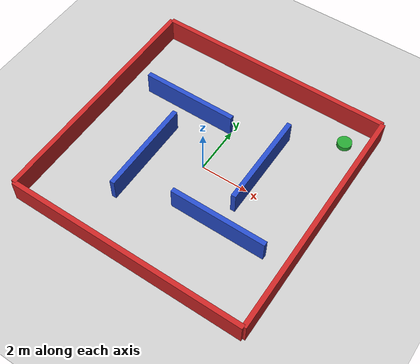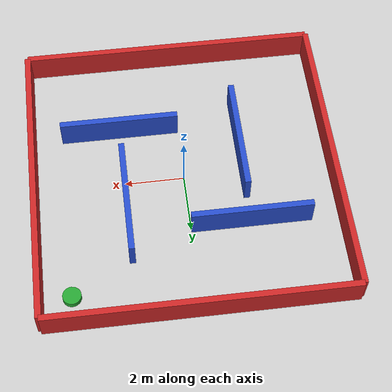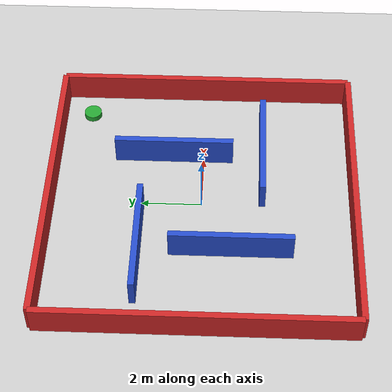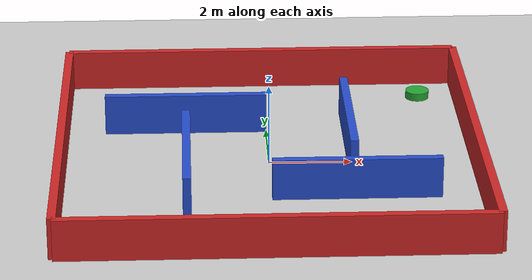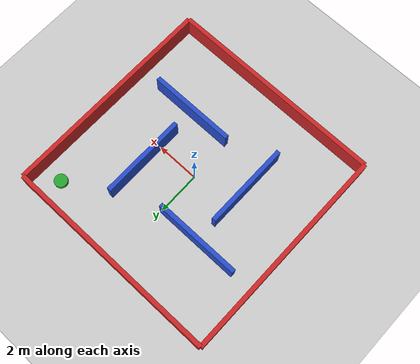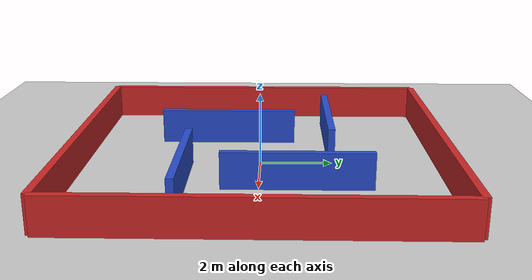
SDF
<?xml version="1.0" ?>
<sdf version="1.6">
  <world name="maze_world">

    <!-- Physics -->
    <physics name="default_physics" default="0" type="ode">
      <gravity>0 0 -9.8066</gravity>
      <ode>
        <solver>
          <type>quick</type>
          <iters>150</iters>
          <sor>1.3</sor>
          <use_dynamic_moi_rescaling>0</use_dynamic_moi_rescaling>
        </solver>
        <constraints>
          <cfm>0.00001</cfm>
          <erp>0.2</erp>
          <contact_max_correcting_vel>1000</contact_max_correcting_vel>
          <contact_surface_layer>0.01</contact_surface_layer>
        </constraints>
      </ode>
      <max_step_size>0.004</max_step_size>
      <real_time_factor>1</real_time_factor>
      <real_time_update_rate>250</real_time_update_rate>
    </physics>

    <!-- Scene -->
    <scene>
      <ambient>0.4 0.4 0.4 1</ambient>
      <background>0.7 0.7 0.7 1</background>
      <shadows>true</shadows>
    </scene>

    <!-- Sun -->
    <include>
      <uri>model://sun</uri>
    </include>

    <!-- Ground Plane -->
    <model name="ground_plane">
      <static>true</static>
      <link name="link">
        <collision name="collision">
          <geometry>
            <plane>
              <normal>0 0 1</normal>
              <size>20 20</size>
            </plane>
          </geometry>
          <surface>
            <contact>
              <collide_bitmask>65535</collide_bitmask>
              <ode>
                <mu>100</mu>
                <mu2>50</mu2>
              </ode>
            </contact>
            <friction>
              <ode>
                <mu>100</mu>
                <mu2>50</mu2>
              </ode>
            </friction>
          </surface>
        </collision>
        <visual name="visual">
          <cast_shadows>false</cast_shadows>
          <geometry>
            <plane>
              <normal>0 0 1</normal>
              <size>20 20</size>
            </plane>
          </geometry>
          <material>
            <script>
              <uri>file://media/materials/scripts/gazebo.material</uri>
              <name>Gazebo/Grey</name>
            </script>
          </material>
        </visual>
      </link>
    </model>

    <!-- Maze Walls -->
    <!-- Outer walls -->
    <model name="wall_north">
      <static>true</static>
      <pose>0 5 0.5 0 0 0</pose>
      <link name="link">
        <collision name="collision">
          <geometry>
            <box>
              <size>10 0.2 1</size>
            </box>
          </geometry>
        </collision>
        <visual name="visual">
          <geometry>
            <box>
              <size>10 0.2 1</size>
            </box>
          </geometry>
          <material>
            <script>
              <uri>file://media/materials/scripts/gazebo.material</uri>
              <name>Gazebo/Red</name>
            </script>
          </material>
        </visual>
      </link>
    </model>

    <model name="wall_south">
      <static>true</static>
      <pose>0 -5 0.5 0 0 0</pose>
      <link name="link">
        <collision name="collision">
          <geometry>
            <box>
              <size>10 0.2 1</size>
            </box>
          </geometry>
        </collision>
        <visual name="visual">
          <geometry>
            <box>
              <size>10 0.2 1</size>
            </box>
          </geometry>
          <material>
            <script>
              <uri>file://media/materials/scripts/gazebo.material</uri>
              <name>Gazebo/Red</name>
            </script>
          </material>
        </visual>
      </link>
    </model>

    <model name="wall_east">
      <static>true</static>
      <pose>5 0 0.5 0 0 0</pose>
      <link name="link">
        <collision name="collision">
          <geometry>
            <box>
              <size>0.2 10 1</size>
            </box>
          </geometry>
        </collision>
        <visual name="visual">
          <geometry>
            <box>
              <size>0.2 10 1</size>
            </box>
          </geometry>
          <material>
            <script>
              <uri>file://media/materials/scripts/gazebo.material</uri>
              <name>Gazebo/Red</name>
            </script>
          </material>
        </visual>
      </link>
    </model>

    <model name="wall_west">
      <static>true</static>
      <pose>-5 0 0.5 0 0 0</pose>
      <link name="link">
        <collision name="collision">
          <geometry>
            <box>
              <size>0.2 10 1</size>
            </box>
          </geometry>
        </collision>
        <visual name="visual">
          <geometry>
            <box>
              <size>0.2 10 1</size>
            </box>
          </geometry>
          <material>
            <script>
              <uri>file://media/materials/scripts/gazebo.material</uri>
              <name>Gazebo/Red</name>
            </script>
          </material>
        </visual>
      </link>
    </model>

    <!-- Internal maze walls -->
    <!-- Horizontal walls -->
    <model name="wall_h1">
      <static>true</static>
      <pose>-2 2 0.5 0 0 0</pose>
      <link name="link">
        <collision name="collision">
          <geometry>
            <box>
              <size>4 0.2 1</size>
            </box>
          </geometry>
        </collision>
        <visual name="visual">
          <geometry>
            <box>
              <size>4 0.2 1</size>
            </box>
          </geometry>
          <material>
            <script>
              <uri>file://media/materials/scripts/gazebo.material</uri>
              <name>Gazebo/Blue</name>
            </script>
          </material>
        </visual>
      </link>
    </model>

    <model name="wall_h2">
      <static>true</static>
      <pose>2 -2 0.5 0 0 0</pose>
      <link name="link">
        <collision name="collision">
          <geometry>
            <box>
              <size>4 0.2 1</size>
            </box>
          </geometry>
        </collision>
        <visual name="visual">
          <geometry>
            <box>
              <size>4 0.2 1</size>
            </box>
          </geometry>
          <material>
            <script>
              <uri>file://media/materials/scripts/gazebo.material</uri>
              <name>Gazebo/Blue</name>
            </script>
          </material>
        </visual>
      </link>
    </model>

    <!-- Vertical walls -->
    <model name="wall_v1">
      <static>true</static>
      <pose>-2 -1 0.5 0 0 0</pose>
      <link name="link">
        <collision name="collision">
          <geometry>
            <box>
              <size>0.2 4 1</size>
            </box>
          </geometry>
        </collision>
        <visual name="visual">
          <geometry>
            <box>
              <size>0.2 4 1</size>
            </box>
          </geometry>
          <material>
            <script>
              <uri>file://media/materials/scripts/gazebo.material</uri>
              <name>Gazebo/Blue</name>
            </script>
          </material>
        </visual>
      </link>
    </model>

    <model name="wall_v2">
      <static>true</static>
      <pose>2 1 0.5 0 0 0</pose>
      <link name="link">
        <collision name="collision">
          <geometry>
            <box>
              <size>0.2 4 1</size>
            </box>
          </geometry>
        </collision>
        <visual name="visual">
          <geometry>
            <box>
              <size>0.2 4 1</size>
            </box>
          </geometry>
          <material>
            <script>
              <uri>file://media/materials/scripts/gazebo.material</uri>
              <name>Gazebo/Blue</name>
            </script>
          </material>
        </visual>
      </link>
    </model>

    <!-- Goal marker -->
    <model name="goal_marker">
      <static>true</static>
      <pose>4 4 0.1 0 0 0</pose>
      <link name="link">
        <collision name="collision">
          <geometry>
            <cylinder>
              <radius>0.3</radius>
              <length>0.2</length>
            </cylinder>
          </geometry>
        </collision>
        <visual name="visual">
          <geometry>
            <cylinder>
              <radius>0.3</radius>
              <length>0.2</length>
            </cylinder>
          </geometry>
          <material>
            <script>
              <uri>file://media/materials/scripts/gazebo.material</uri>
              <name>Gazebo/Green</name>
            </script>
          </material>
        </visual>
      </link>
    </model>

  </world>
</sdf>
